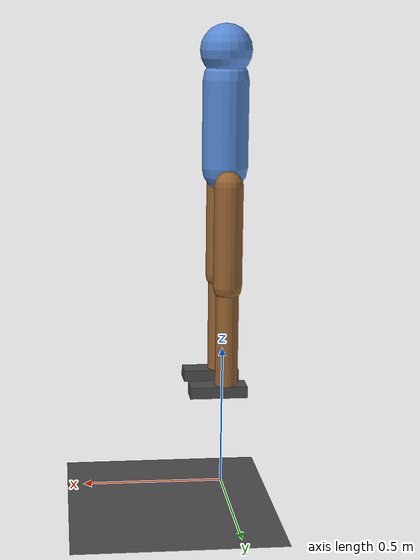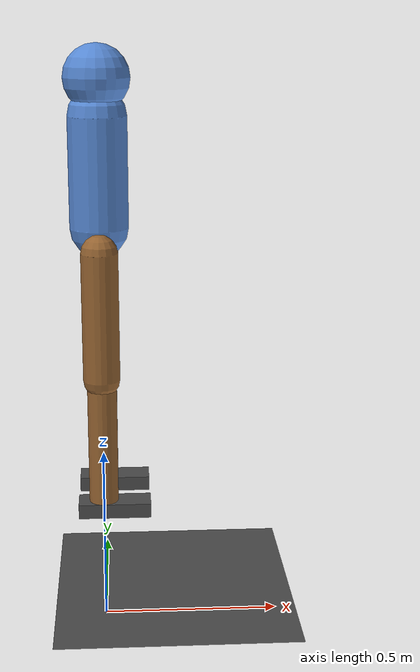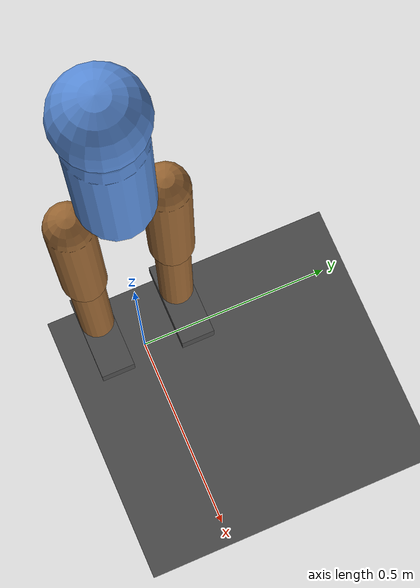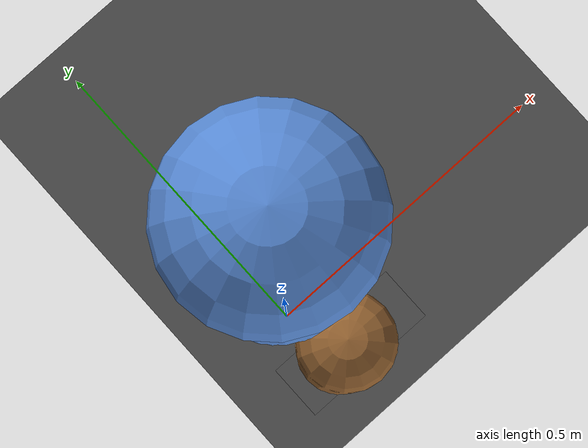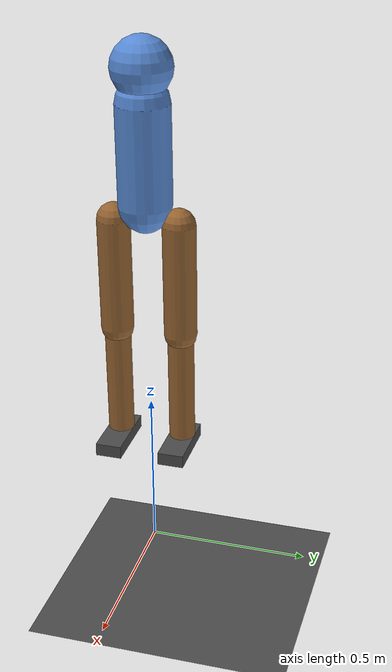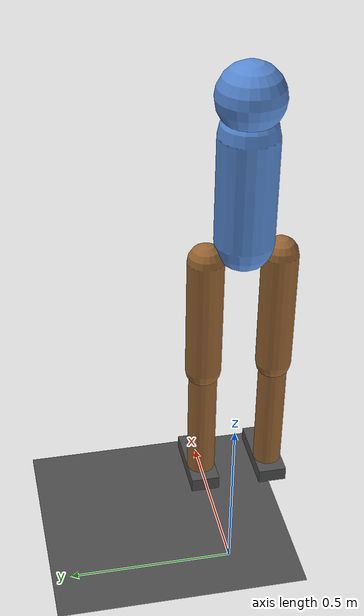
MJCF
<?xml version='1.0'?>
<mujoco model="biped_robot">
  <compiler angle="degree" inertiafromgeom="true"/>
  <option timestep="0.002" gravity="0 0 -9.81" integrator="Euler"/>
  <default>
    <joint limited="true" damping="0.5" armature="0.01"/>
    <geom condim="3" friction="1.0 0.5 0.5" density="1000"/>
    <motor ctrlrange="-1 1" ctrllimited="true"/>
  </default>

  <visual>
    <headlight ambient="0.4 0.4 0.4"/>
    <map znear="0.01"/>
    <global offwidth="1280" offheight="720"/>
  </visual>

  <asset>
    <texture type="skybox" builtin="gradient" rgb1="0.1 0.12 0.18"
             rgb2="0.02 0.02 0.04" width="512" height="512"/>
    <texture name="grid" type="2d" builtin="checker"
             rgb1="0.25 0.25 0.28" rgb2="0.20 0.20 0.22"
             width="256" height="256"/>
    <material name="grid_mat" texture="grid" texrepeat="8 8" reflectance="0.1"/>
  </asset>

  <worldbody>
    <light diffuse="0.8 0.8 0.8" pos="0 0 5" dir="0 0 -1"/>
    <light diffuse="0.4 0.4 0.4" pos="2 2 4" dir="-0.5 -0.5 -1"/>
    <geom name="ground" type="plane" size="10 10 0.1"
          rgba="0.3 0.3 0.3 1" material="grid_mat"/>

    <!-- ======================== TORSO ======================== -->
    <body name="torso" pos="0 0 1.3">
      <joint name="root" type="free"/>
      <geom name="torso_geom" type="capsule" fromto="0 0 -0.15 0 0 0.15"
            size="0.08" rgba="0.35 0.55 0.85 1"/>
      <!-- Head -->
      <geom name="head_geom" type="sphere" pos="0 0 0.25" size="0.09"
            rgba="0.35 0.55 0.85 1"/>

      <!-- ==================== LEFT LEG ==================== -->
      <!-- Left hip -->
      <body name="left_thigh" pos="0 0.1 -0.2">
        <joint name="left_hip_y" type="hinge" axis="0 1 0" range="-120 45"/>
        <joint name="left_hip_x" type="hinge" axis="1 0 0" range="-30 30"/>
        <geom name="left_thigh_geom" type="capsule" fromto="0 0 0 0 0 -0.35"
              size="0.05" rgba="0.6 0.4 0.2 1"/>

        <!-- Left shin -->
        <body name="left_shin" pos="0 0 -0.35">
          <joint name="left_knee" type="hinge" axis="0 1 0" range="-5 150"/>
          <geom name="left_shin_geom" type="capsule" fromto="0 0 0 0 0 -0.35"
                size="0.04" rgba="0.6 0.4 0.2 1"/>

          <!-- Left foot -->
          <body name="left_foot" pos="0 0 -0.35">
            <joint name="left_ankle_y" type="hinge" axis="0 1 0" range="-45 60"/>
            <geom name="left_foot_geom" type="box" pos="0.03 0 -0.02"
                  size="0.1 0.04 0.02" rgba="0.3 0.3 0.3 1"/>
            <!-- Toe sensor site -->
            <site name="left_toe" pos="0.1 0 -0.04" size="0.01"/>
            <!-- Heel sensor site -->
            <site name="left_heel" pos="-0.05 0 -0.04" size="0.01"/>
          </body>
        </body>
      </body>

      <!-- ==================== RIGHT LEG ==================== -->
      <!-- Right hip -->
      <body name="right_thigh" pos="0 -0.1 -0.2">
        <joint name="right_hip_y" type="hinge" axis="0 1 0" range="-120 45"/>
        <joint name="right_hip_x" type="hinge" axis="1 0 0" range="-30 30"/>
        <geom name="right_thigh_geom" type="capsule" fromto="0 0 0 0 0 -0.35"
              size="0.05" rgba="0.6 0.4 0.2 1"/>

        <!-- Right shin -->
        <body name="right_shin" pos="0 0 -0.35">
          <joint name="right_knee" type="hinge" axis="0 1 0" range="-5 150"/>
          <geom name="right_shin_geom" type="capsule" fromto="0 0 0 0 0 -0.35"
                size="0.04" rgba="0.6 0.4 0.2 1"/>

          <!-- Right foot -->
          <body name="right_foot" pos="0 0 -0.35">
            <joint name="right_ankle_y" type="hinge" axis="0 1 0" range="-45 60"/>
            <geom name="right_foot_geom" type="box" pos="0.03 0 -0.02"
                  size="0.1 0.04 0.02" rgba="0.3 0.3 0.3 1"/>
            <!-- Toe sensor site -->
            <site name="right_toe" pos="0.1 0 -0.04" size="0.01"/>
            <!-- Heel sensor site -->
            <site name="right_heel" pos="-0.05 0 -0.04" size="0.01"/>
          </body>
        </body>
      </body>
    </body>
  </worldbody>

  <!-- ======================== ACTUATORS ======================== -->
  <actuator>
    <!-- Left leg -->
    <motor name="left_hip_y_motor"   joint="left_hip_y"   gear="120"/>
    <motor name="left_hip_x_motor"   joint="left_hip_x"   gear="60"/>
    <motor name="left_knee_motor"    joint="left_knee"     gear="90"/>
    <motor name="left_ankle_motor"   joint="left_ankle_y"  gear="50"/>
    <!-- Right leg -->
    <motor name="right_hip_y_motor"  joint="right_hip_y"  gear="120"/>
    <motor name="right_hip_x_motor"  joint="right_hip_x"  gear="60"/>
    <motor name="right_knee_motor"   joint="right_knee"    gear="90"/>
    <motor name="right_ankle_motor"  joint="right_ankle_y" gear="50"/>
  </actuator>

  <!-- ======================== SENSORS ======================== -->
  <sensor>
    <!-- Torso orientation and velocity -->
    <framequat     name="torso_orient"   objtype="body" objname="torso"/>
    <framelinvel   name="torso_linvel"   objtype="body" objname="torso"/>
    <frameangvel   name="torso_angvel"   objtype="body" objname="torso"/>
    <framepos      name="torso_pos"      objtype="body" objname="torso"/>
    <accelerometer name="torso_accel"    site="left_toe"/>
    <gyro          name="torso_gyro"     site="left_toe"/>

    <!-- Left leg joint positions -->
    <jointpos name="left_hip_y_pos"   joint="left_hip_y"/>
    <jointpos name="left_hip_x_pos"   joint="left_hip_x"/>
    <jointpos name="left_knee_pos"    joint="left_knee"/>
    <jointpos name="left_ankle_y_pos" joint="left_ankle_y"/>

    <!-- Right leg joint positions -->
    <jointpos name="right_hip_y_pos"   joint="right_hip_y"/>
    <jointpos name="right_hip_x_pos"   joint="right_hip_x"/>
    <jointpos name="right_knee_pos"    joint="right_knee"/>
    <jointpos name="right_ankle_y_pos" joint="right_ankle_y"/>

    <!-- Left leg joint velocities -->
    <jointvel name="left_hip_y_vel"   joint="left_hip_y"/>
    <jointvel name="left_hip_x_vel"   joint="left_hip_x"/>
    <jointvel name="left_knee_vel"    joint="left_knee"/>
    <jointvel name="left_ankle_y_vel" joint="left_ankle_y"/>

    <!-- Right leg joint velocities -->
    <jointvel name="right_hip_y_vel"   joint="right_hip_y"/>
    <jointvel name="right_hip_x_vel"   joint="right_hip_x"/>
    <jointvel name="right_knee_vel"    joint="right_knee"/>
    <jointvel name="right_ankle_y_vel" joint="right_ankle_y"/>

    <!-- Actuator forces -->
    <actuatorfrc name="left_hip_y_frc"   actuator="left_hip_y_motor"/>
    <actuatorfrc name="left_hip_x_frc"   actuator="left_hip_x_motor"/>
    <actuatorfrc name="left_knee_frc"    actuator="left_knee_motor"/>
    <actuatorfrc name="left_ankle_frc"   actuator="left_ankle_motor"/>
    <actuatorfrc name="right_hip_y_frc"  actuator="right_hip_y_motor"/>
    <actuatorfrc name="right_hip_x_frc"  actuator="right_hip_x_motor"/>
    <actuatorfrc name="right_knee_frc"   actuator="right_knee_motor"/>
    <actuatorfrc name="right_ankle_frc"  actuator="right_ankle_motor"/>

    <!-- Foot contact sensors -->
    <touch name="left_toe_touch"   site="left_toe"/>
    <touch name="left_heel_touch"  site="left_heel"/>
    <touch name="right_toe_touch"  site="right_toe"/>
    <touch name="right_heel_touch" site="right_heel"/>
  </sensor>
</mujoco>
